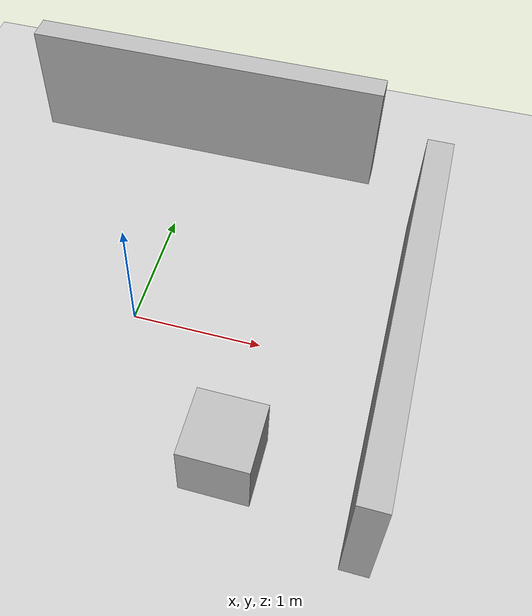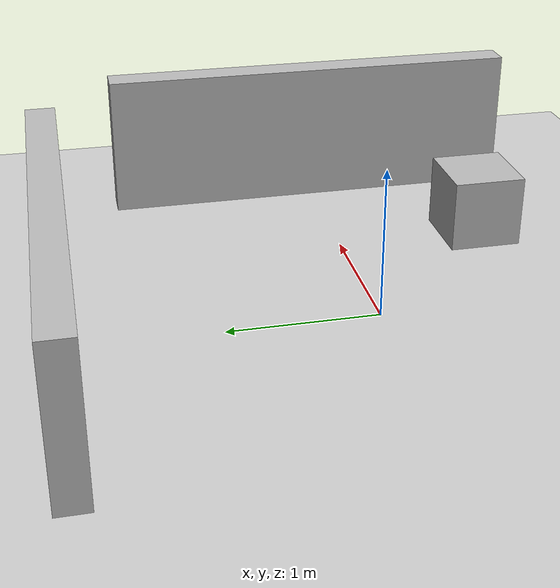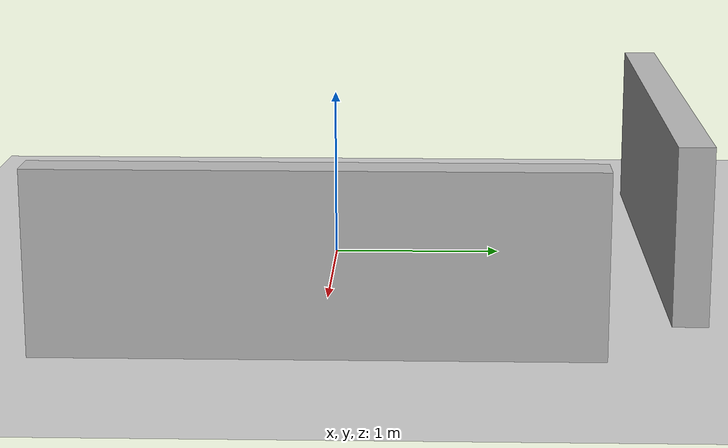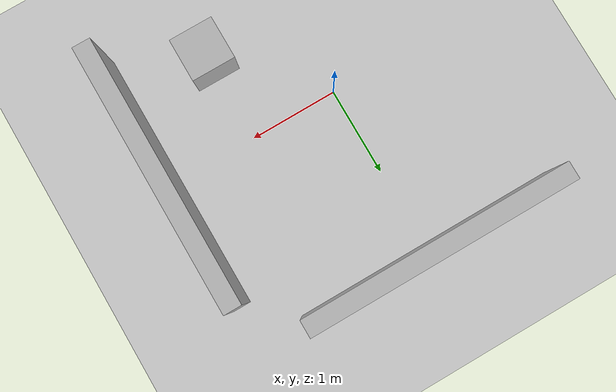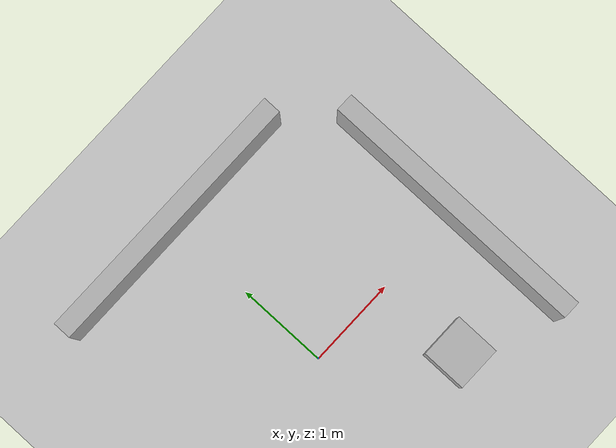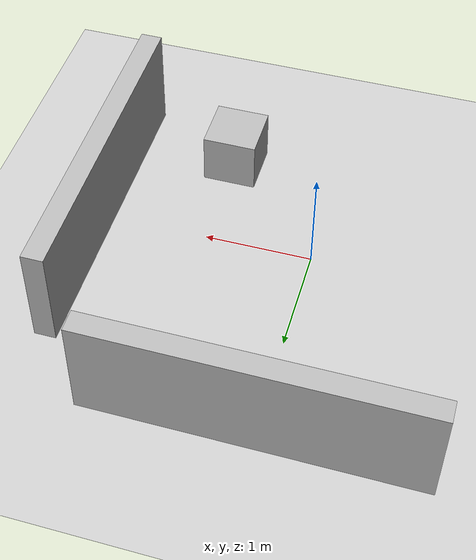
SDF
<?xml version="1.0"?>
<sdf version="1.9">
  <world name="inventory_test_world">

    <plugin filename="gz-sim-physics-system" name="gz::sim::systems::Physics"/>
    <plugin filename="gz-sim-sensors-system" name="gz::sim::systems::Sensors">
      <render_engine>ogre2</render_engine>
    </plugin>
    <plugin filename="gz-sim-scene-broadcaster-system" name="gz::sim::systems::SceneBroadcaster"/>
    <plugin filename="gz-sim-user-commands-system" name="gz::sim::systems::UserCommands"/>

    <light type="directional" name="sun">
      <cast_shadows>true</cast_shadows>
      <pose>0 0 10 0 0 0</pose>
      <direction>-0.5 0.1 -0.9</direction>
    </light>

    <model name="ground_plane">
      <static>true</static>
      <link name="link">
        <collision name="collision">
          <geometry><plane><normal>0 0 1</normal></plane></geometry>
        </collision>
        <visual name="visual">
          <geometry><plane><normal>0 0 1</normal><size>20 20</size></plane></geometry>
        </visual>
      </link>
    </model>

    <!-- A few simple box obstacles for the lidar to detect -->
    <model name="wall_1">
      <static>true</static>
      <pose>2 0 0.5 0 0 0</pose>
      <link name="link">
        <collision name="collision">
          <geometry><box><size>0.2 3 1</size></box></geometry>
        </collision>
        <visual name="visual">
          <geometry><box><size>0.2 3 1</size></box></geometry>
        </visual>
      </link>
    </model>

    <model name="wall_2">
      <static>true</static>
      <pose>0 2 0.5 0 0 0</pose>
      <link name="link">
        <collision name="collision">
          <geometry><box><size>3 0.2 1</size></box></geometry>
        </collision>
        <visual name="visual">
          <geometry><box><size>3 0.2 1</size></box></geometry>
        </visual>
      </link>
    </model>

    <model name="box_obstacle">
      <static>true</static>
      <pose>1 -1 0.25 0 0 0</pose>
      <link name="link">
        <collision name="collision">
          <geometry><box><size>0.5 0.5 0.5</size></box></geometry>
        </collision>
        <visual name="visual">
          <geometry><box><size>0.5 0.5 0.5</size></box></geometry>
        </visual>
      </link>
    </model>

  </world>
</sdf>
